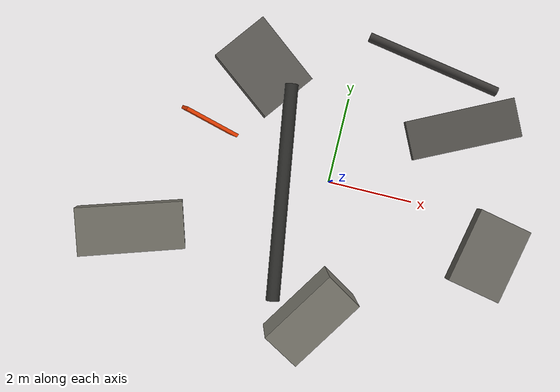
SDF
<sdf version='1.9'>
  <model name='disaster_rubble_field'>
    <static>true</static>

    <link name='block_01'>
      <pose>-4.2 -2.1 0.32 0.08 0.16 0.3</pose>
      <collision name='collision'><geometry><box><size>2.4 1.1 0.6</size></box></geometry></collision>
      <visual name='visual'><geometry><box><size>2.4 1.1 0.6</size></box></geometry><material><diffuse>0.45 0.44 0.40 1</diffuse></material></visual>
    </link>
    <link name='block_02'>
      <pose>-2.1 2.2 0.25 -0.05 0.12 -0.65</pose>
      <collision name='collision'><geometry><box><size>1.8 1.4 0.5</size></box></geometry></collision>
      <visual name='visual'><geometry><box><size>1.8 1.4 0.5</size></box></geometry><material><diffuse>0.38 0.37 0.35 1</diffuse></material></visual>
    </link>
    <link name='block_03'>
      <pose>0.3 -3.1 0.42 0.22 -0.06 1.0</pose>
      <collision name='collision'><geometry><box><size>2.0 1.0 0.8</size></box></geometry></collision>
      <visual name='visual'><geometry><box><size>2.0 1.0 0.8</size></box></geometry><material><diffuse>0.50 0.49 0.45 1</diffuse></material></visual>
    </link>
    <link name='block_04'>
      <pose>2.7 1.9 0.28 0.04 -0.10 0.45</pose>
      <collision name='collision'><geometry><box><size>2.5 0.9 0.5</size></box></geometry></collision>
      <visual name='visual'><geometry><box><size>2.5 0.9 0.5</size></box></geometry><material><diffuse>0.34 0.33 0.31 1</diffuse></material></visual>
    </link>
    <link name='block_05'>
      <pose>4.0 -0.8 0.18 0.0 0.08 -0.2</pose>
      <collision name='collision'><geometry><box><size>1.3 1.8 0.35</size></box></geometry></collision>
      <visual name='visual'><geometry><box><size>1.3 1.8 0.35</size></box></geometry><material><diffuse>0.43 0.42 0.39 1</diffuse></material></visual>
    </link>
    <link name='pipe_01'>
      <pose>-1.0 -0.5 0.38 1.5708 0.0 0.15</pose>
      <collision name='collision'><geometry><cylinder><radius>0.16</radius><length>5.0</length></cylinder></geometry></collision>
      <visual name='visual'><geometry><cylinder><radius>0.16</radius><length>5.0</length></cylinder></geometry><material><diffuse>0.18 0.18 0.17 1</diffuse></material></visual>
    </link>
    <link name='pipe_02'>
      <pose>1.7 3.2 0.30 1.5708 0.0 1.4</pose>
      <collision name='collision'><geometry><cylinder><radius>0.11</radius><length>3.2</length></cylinder></geometry></collision>
      <visual name='visual'><geometry><cylinder><radius>0.11</radius><length>3.2</length></cylinder></geometry><material><diffuse>0.22 0.21 0.20 1</diffuse></material></visual>
    </link>
    <link name='warning_panel'>
      <pose>-3.0 0.7 0.42 0.0 0.35 -0.25</pose>
      <visual name='visual'>
        <geometry><box><size>1.3 0.08 0.8</size></box></geometry>
        <material><diffuse>1.0 0.28 0.02 1</diffuse></material>
      </visual>
    </link>
  </model>
</sdf>
